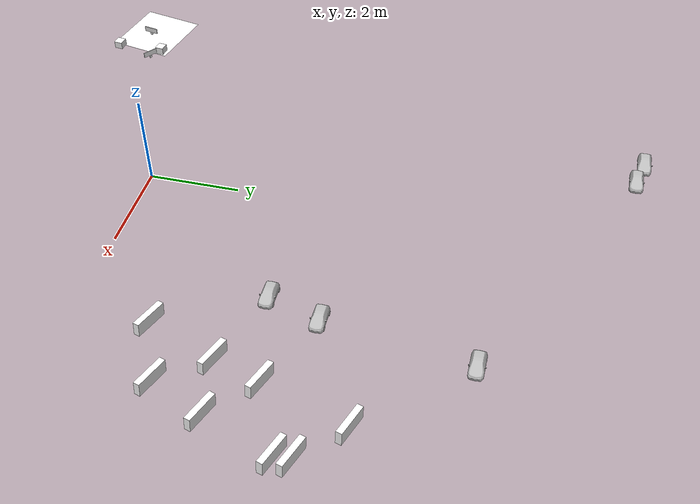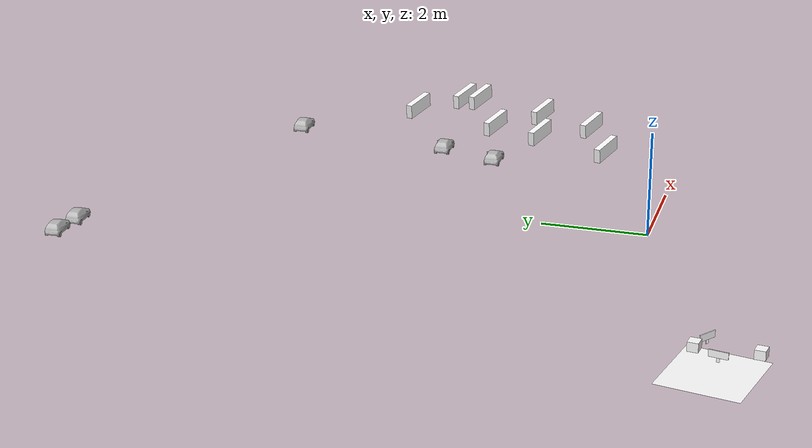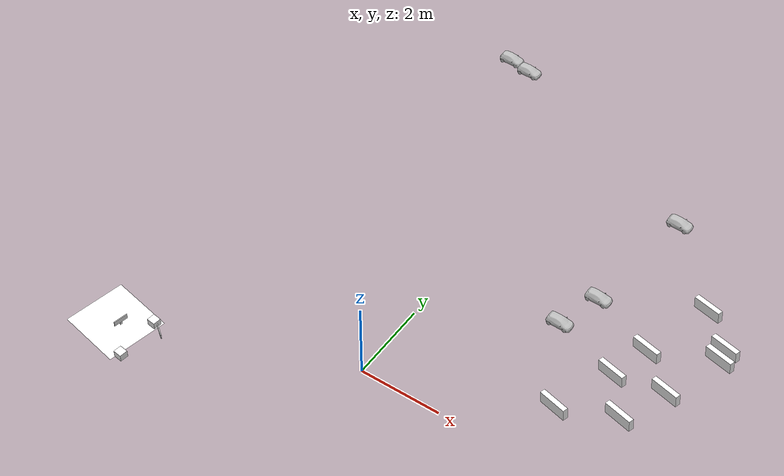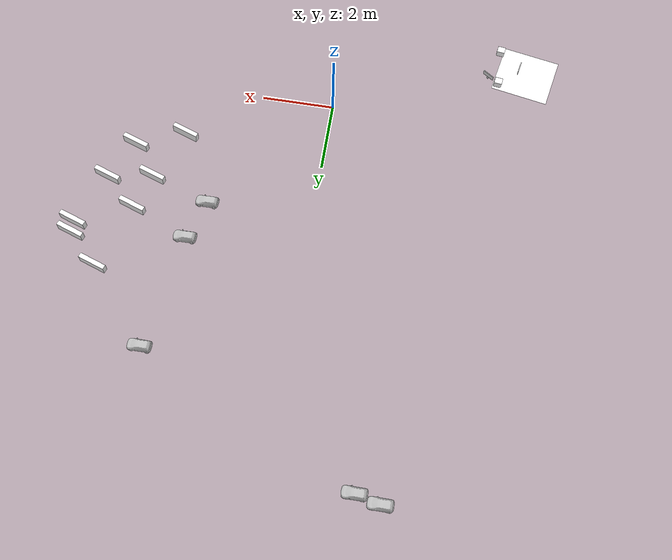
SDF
<sdf version="1.10">
 <world name="default">
  <light type="directional" name="my_light">
   <pose>0 0 30 0 0 0</pose>
   <diffuse>1.0 1.0 1.0 1</diffuse>
   <specular>.1 .1 .1 1</specular>
   <attenuation><range>100</range></attenuation>
   <direction>0 0 -1</direction>
  </light>
  <physics type="ode">
   <max_step_size>0.0040000000000000001</max_step_size>
   <real_time_factor>1</real_time_factor>
   <real_time_update_rate>250</real_time_update_rate>
  </physics>
  <plugin name="gz::sim::systems::Physics" filename="gz-sim-physics-system"/>
  <plugin name="gz::sim::systems::UserCommands" filename="gz-sim-user-commands-system"/>
  <plugin name="gz::sim::systems::SceneBroadcaster" filename="gz-sim-scene-broadcaster-system"/>
  <plugin name="gz::sim::systems::Contact" filename="gz-sim-contact-system"/>
  <plugin name="gz::sim::systems::Imu" filename="gz-sim-imu-system"/>
  <plugin name="gz::sim::systems::Magnetometer" filename="gz-sim-magnetometer-system"/>
  <plugin name="gz::sim::systems::Altimeter" filename="gz-sim-altimeter-system"/>
  <plugin name="gz::sim::systems::NavSat" filename="gz-sim-navsat-system"/>
  <plugin name="gz::sim::systems::Sensors" filename="gz-sim-sensors-system">
   <render_engine>ogre2</render_engine>
  </plugin>
  <gravity>0 0 -9.8000000000000007</gravity>
  <magnetic_field>6.0000000000000002e-06 2.3e-05 -4.1999999999999998e-05</magnetic_field>
  <atmosphere type="adiabatic"/>
  <spherical_coordinates>
   <surface_model>EARTH_WGS84</surface_model>
   <latitude_deg>39.79480109851339</latitude_deg>
   <longitude_deg>-84.08631702793322</longitude_deg>
   <elevation>265.2</elevation>
   <heading_deg>0</heading_deg>
  </spherical_coordinates>
  <scene><grid>false</grid></scene>
  <include>
   <uri>models://finish_line</uri>
   <name>finish</name>
   <pose>-5.324240 -1.994640 0.007000 0 0 -0.200000</pose>
  </include>
  <include>
   <uri>models://stop_sign</uri>
   <name>stop_sign</name>
   <pose>-5.1 -2.04 0.247000 0 0 -0.200000</pose>
  </include>
  <include>
   <uri>models://start_sign</uri>
   <name>start</name>
   <pose>-4.252800 -1.737550 0.147000 0 0 -2.200000</pose>
  </include>
  <include>
   <uri>models://start_point</uri>
   <name>start_point_1</name>
   <pose>-4.552800 -1.566710 0.100000 0 0 -1.700000</pose>
  </include>
  <include>
   <uri>models://start_point</uri>
   <name>start_point_2</name>
   <pose>-4.552800 -2.676710 0.100000 0 0 -1.700000</pose>
  </include>
  <include>
   <uri>models://barricade</uri>
   <name>barricade_1</name>
   <pose>5.690680 3.213550 0.081000 0 -0.100000 -0.300000</pose>
  </include>
  <include>
   <uri>models://barricade</uri>
   <name>barricade_2</name>
   <pose>4.790680 4.013550 0.081000 0 -0.100000 -0.300000</pose>
  </include>
  <include>
   <uri>models://barricade</uri>
   <name>barricade_3</name>
   <pose>4.490680 3.013550 0.081000 0 -0.100000 -0.300000</pose>
  </include>
  <include>
   <uri>models://barricade</uri>
   <name>barricade_4</name>
   <pose>6.190680 5.013550 0.081000 0 -0.100000 -0.300000</pose>
  </include>
  <include>
   <uri>models://barricade</uri>
   <name>barricade_5</name>
   <pose>6.225080 4.683330 0.081000 0 -0.100000 -0.300000</pose>
  </include>
  <include>
   <uri>models://barricade</uri>
   <name>barricade_6</name>
   <pose>5.194560 2.082410 0.081000 0 -0.100000 -0.300000</pose>
  </include>
  <include>
   <uri>models://barricade</uri>
   <name>barricade_7</name>
   <pose>3.913470 1.539040 0.081000 0 -0.100000 -0.300000</pose>
  </include>
  <include>
   <uri>models://barricade</uri>
   <name>barricade_8</name>
   <pose>5.357740 5.817030 0.081000 0 -0.100000 -0.300000</pose>
  </include>
  <include><uri>models://hatchback_red</uri><name>car_1</name><pose>-2.839240 10.533400 0 0 0 0</pose></include>
  <include><uri>models://hatchback_red</uri><name>car_2</name><pose>-2.219100 10.387000 0 0 0 0</pose></include>
  <include><uri>models://hatchback_red</uri><name>car_5</name><pose>2.778630 3.582720 0 0 0 0</pose></include>
  <include><uri>models://hatchback_red</uri><name>car_7</name><pose>3.127710 4.690750 0 0 0 0</pose></include>
  <include><uri>models://hatchback_red</uri><name>car_9</name><pose>3.538780 7.775480 0 0 0 0</pose></include>
 </world>
</sdf>

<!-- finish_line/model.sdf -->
<sdf version='1.7'>
  <model name='finish_line'>
    <link name='link'>
      <pose>0 0 0 0 -0 0</pose>
      <visual name='visual'>
        <geometry>
          <box>
            <size>1.599197 1.5 0</size>
          </box>
        </geometry>
        <material>
        <diffuse>1.0 1.0 1.0</diffuse>
          <specular>1.0 1.0 1.0</specular>
          <pbr>
          <metal>
          <albedo_map>materials/textures/race.png</albedo_map>
          </metal>
          </pbr>
          <shader type='pixel'/>
        </material>
        <pose>0 0 0 0 -0 0</pose>
        <transparency>0</transparency>
        <cast_shadows>1</cast_shadows>
      </visual>
    </link>
    <static>1</static>
  </model>
</sdf>

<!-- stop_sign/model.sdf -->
<sdf version='1.10'>
  <model name='stop_sign'>
    <link name='link_0'>
      <inertial>
        <mass>1</mass>
        <inertia>
          <ixx>1</ixx>
          <ixy>0</ixy>
          <ixz>0</ixz>
          <iyy>1</iyy>
          <iyz>0</iyz>
          <izz>1</izz>
        </inertia>

      </inertial>
      <pose>0 -0 0 0 -0 0</pose>
      <self_collide>0</self_collide>
      <enable_wind>0</enable_wind>
      <kinematic>0</kinematic>
      <visual name='visual'>
        <pose>0 0 0 0 -0 0</pose>
        <geometry>
          <box>
            <size>0.01897 0.348892 0.127526</size>
          </box>
        </geometry>
        <material>
          <diffuse>1.0 1.0 1.0</diffuse>
          <specular>1.0 1.0 1.0</specular>
          <pbr>
          <metal>
          <albedo_map>materials/textures/Stop.png</albedo_map>
          </metal>
          </pbr>
          <shader type='pixel'/>
        </material>
        <transparency>0</transparency>
        <cast_shadows>1</cast_shadows>
      </visual>
    </link>
    <link name='link_1'>
      <inertial>
        <mass>9.52726e-05</mass>
        <inertia>
          <ixx>1</ixx>
          <ixy>0</ixy>
          <ixz>0</ixz>
          <iyy>1</iyy>
          <iyz>0</iyz>
          <izz>1</izz>
        </inertia>
        <pose>0 0 0 0 -0 0</pose>
      </inertial>
      <pose>-0.002789 -0 -0.068834 0 -0 0</pose>
      <self_collide>0</self_collide>
      <enable_wind>0</enable_wind>
      <kinematic>0</kinematic>
      <visual name='visual'>
        <pose>0 0 0 0 -0 0</pose>
        <geometry>
          <box>
            <size>0.012242 0.055737 0.139564</size>
          </box>
        </geometry>
        <material>
          <diffuse>1.0 1.0 1.0</diffuse>
          <specular>1.0 1.0 1.0</specular>
          <pbr>
          <metal>
          <albedo_map>materials/textures/red.png</albedo_map>
          </metal>
          </pbr>
          <shader type='pixel'/>
        </material>
        <transparency>0</transparency>
        <cast_shadows>1</cast_shadows>
      </visual>
    </link>
    <link name='link_2'>
      <inertial>
        <mass>1</mass>
        <inertia>
          <ixx>1</ixx>
          <ixy>0</ixy>
          <ixz>0</ixz>
          <iyy>1</iyy>
          <iyz>0</iyz>
          <izz>1</izz>
        </inertia>

      </inertial>
      <pose>0.0097 -0 0 0 -0 0</pose>
      <self_collide>0</self_collide>
      <enable_wind>0</enable_wind>
      <kinematic>0</kinematic>
      <visual name='visual'>
        <pose>0 0 0 0 -0 0</pose>
        <geometry>
          <box>
            <size>0.001897 0.348892 0.127526</size>
          </box>
        </geometry>
        <material>
          <diffuse>1.0 1.0 1.0</diffuse>
          <specular>1.0 1.0 1.0</specular>
          <pbr>
          <metal>
          <albedo_map>materials/textures/Stop.png</albedo_map>
          </metal>
          </pbr>
          <shader type='pixel'/>
        </material>
        <transparency>0.2</transparency>
        <cast_shadows>1</cast_shadows>
      </visual>
    </link>

    <static>1</static>
    <allow_auto_disable>1</allow_auto_disable>
  </model>
</sdf>

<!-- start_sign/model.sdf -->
<sdf version='1.7'>
<plugin filename="gz-sim-contact-system"
          name="gz::sim::systems::Contact">
    </plugin>
  <model name='start_sign'>
    <link name='link_0'>
      <inertial>
        <mass>1</mass>
        <inertia>
          <ixx>1</ixx>
          <ixy>0</ixy>
          <ixz>0</ixz>
          <iyy>1</iyy>
          <iyz>0</iyz>
          <izz>1</izz>
        </inertia>

      </inertial>
      <pose>0 -0 0 0 -0 0</pose>
      <self_collide>0</self_collide>
      <enable_wind>0</enable_wind>
      <kinematic>0</kinematic>
      <visual name='visual'>
        <pose>0 0 0 0 -0 0</pose>
        <geometry>
          <box>
            <size>0.01897 0.348892 0.127526</size>
          </box>
        </geometry>
        <material>
          <diffuse>1.0 1.0 1.0</diffuse>
          <specular>1.0 1.0 1.0</specular>
          <pbr>
          <metal>
          <albedo_map>materials/textures/green.png</albedo_map>
          </metal>
          </pbr>
          <shader type='pixel'/>
        </material>
        <transparency>0</transparency>
        <cast_shadows>1</cast_shadows>
      </visual>

      <collision name='collision'>
        <laser_retro>0</laser_retro>
        <max_contacts>10</max_contacts>
        <pose>0 0 0 0 -0 0</pose>
        <geometry>
          <box>
            <size>0.01897 0.348892 0.127526</size>
          </box>
        </geometry>

      </collision>
    <sensor name='sensor_contact' type='contact'>
          <contact>
            <collision>collision</collision>
            <topic>/collision_detect</topic>
          </contact>
          <always_on>1</always_on>
          <update_rate>100</update_rate>
        </sensor>
    </link>
    <link name='link_2'>
      <inertial>
        <mass>1</mass>
        <inertia>
          <ixx>1</ixx>
          <ixy>0</ixy>
          <ixz>0</ixz>
          <iyy>1</iyy>
          <iyz>0</iyz>
          <izz>1</izz>
        </inertia>

      </inertial>
      <pose>0.009485 -0 0 0 -0 0</pose>
      <self_collide>0</self_collide>
      <enable_wind>0</enable_wind>
      <kinematic>0</kinematic>
      <visual name='visual'>
        <pose>0 0 0 0 -0 0</pose>
        <geometry>
          <box>
            <size>0.001 0.348892 0.127526</size>
          </box>
        </geometry>
        <material>
          <diffuse>1.0 1.0 1.0</diffuse>
          <specular>1.0 1.0 1.0</specular>
          <pbr>
          <metal>
          <albedo_map>materials/textures/start.png</albedo_map>
          </metal>
          </pbr>
          <shader type='pixel'/>
        </material>
        <transparency>0.2</transparency>
        <cast_shadows>0</cast_shadows>
      </visual>
      <collision name='collision'>
        <laser_retro>0</laser_retro>
        <max_contacts>10</max_contacts>
        <pose>0 0 0 0 -0 0</pose>
        <geometry>
          <box>
            <size>0.001897 0.348892 0.127526</size>
          </box>
        </geometry>

      </collision>
    <sensor name='sensor_contact' type='contact'>
          <contact>
            <collision>collision</collision>
            <topic>/collision_detect</topic>
          </contact>
          <always_on>1</always_on>
          <update_rate>100</update_rate>
        </sensor>
    </link>
    <link name='link_1'>
      <inertial>
        <mass>9.52726e-05</mass>
        <inertia>
          <ixx>1</ixx>
          <ixy>0</ixy>
          <ixz>0</ixz>
          <iyy>1</iyy>
          <iyz>0</iyz>
          <izz>1</izz>
        </inertia>
        <pose>0 0 0 0 -0 0</pose>
      </inertial>
      <pose>-0.002789 -0 -0.068834 0 -0 0</pose>
      <self_collide>0</self_collide>
      <enable_wind>0</enable_wind>
      <kinematic>0</kinematic>
      <visual name='visual'>
        <pose>0 0 0 0 -0 0</pose>
        <geometry>
          <box>
            <size>0.012242 0.055737 0.139564</size>
          </box>
        </geometry>
        <material>
          <diffuse>1.0 1.0 1.0</diffuse>
          <specular>1.0 1.0 1.0</specular>
          <pbr>
          <metal>
          <albedo_map>materials/textures/blue.png</albedo_map>
          </metal>
          </pbr>
          <shader type='pixel'/>
        </material>
        <transparency>0</transparency>
        <cast_shadows>1</cast_shadows>
      </visual>
      <collision name='collision'>
        <laser_retro>0</laser_retro>
        <max_contacts>10</max_contacts>
        <pose>0 0 0 0 -0 0</pose>
        <geometry>
          <box>
            <size>0.012242 0.055737 0.139564</size>
          </box>
        </geometry>
      </collision>
    <sensor name='sensor_contact' type='contact'>
          <contact>
            <collision>collision</collision>
            <topic>/collision_detect</topic>
          </contact>
          <always_on>1</always_on>
          <update_rate>100</update_rate>
        </sensor>
    </link>

    <static>1</static>
    <allow_auto_disable>1</allow_auto_disable>
  </model>
</sdf>

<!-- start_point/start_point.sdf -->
<sdf version='1.7'>
  <model name='start_point'>
  <plugin filename="gz-sim-contact-system"
          name="gz::sim::systems::Contact">
    </plugin>
    <link name='link'>
      <pose>0 0 0 0 -0 0</pose>
      <visual name='visual'>
        <geometry>
          <box>
            <size>0.199197 0.213873 0.172311</size>
          </box>
        </geometry>
        <material>
          <diffuse>1.0 1.0 1.0</diffuse>
          <specular>1.0 1.0 1.0</specular>
          <pbr>
          <metal>
          <albedo_map>materials/textures/race.png</albedo_map>
          </metal>
          </pbr>
          <shader type='pixel'/>
        </material>
        <pose>0 0 0 0 -0 0</pose>
        <transparency>0</transparency>
        <cast_shadows>1</cast_shadows>
      </visual>
      <collision name='collision'>
        <laser_retro>0</laser_retro>
        <max_contacts>10</max_contacts>
        <pose>0 0 0 0 -0 0</pose>
        <geometry>
          <box>
            <size>0.199197 0.213873 0.172311</size>
          </box>
        </geometry>
      </collision>
      <sensor name='sensor_contact' type='contact'>
          <contact>
            <collision>collision</collision>
            <topic>/collision_detect</topic>
          </contact>
          <always_on>1</always_on>
          <update_rate>100</update_rate>
        </sensor>
    </link>
    <static>1</static>
  </model>
</sdf>

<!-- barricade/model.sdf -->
<sdf version='1.7'>
  <model name='barricade'>
  <plugin filename="gz-sim-contact-system"
          name="gz::sim::systems::Contact">
    </plugin>
  <static>true</static>
    <link name='link'>
      <inertial>
        <mass>0.245303</mass>
        <inertia>
          <ixx>0.000221867</ixx>
          <ixy>0</ixy>
          <ixz>0</ixz>
          <iyy>0.00228889</iyy>
          <iyz>0</iyz>
          <izz>0.00232105</izz>
        </inertia>
        <pose>0 0 0 0 -0 0</pose>
      </inertial>
      <self_collide>0</self_collide>
      <enable_wind>0</enable_wind>
      <kinematic>0</kinematic>
      <pose>0 0 0 0 -0 0</pose>
      <visual name='visual'>
        <geometry>
          <box>
            <size>0.727613 0.128825 0.288118</size>
          </box>
        </geometry>
        <material>
          <diffuse>1.0 1.0 1.0</diffuse>
          <specular>1.0 1.0 1.0</specular>
          <pbr>
          <metal>
          <albedo_map>materials/textures/blue.png</albedo_map>
          </metal>
          </pbr>
          <shader type='pixel'/>
        </material>
        <pose>0 0 0 0 -0 0</pose>
        <transparency>0</transparency>
        <cast_shadows>1</cast_shadows>
      </visual>
      <collision name='collision'>
        <laser_retro>0</laser_retro>
        <max_contacts>10</max_contacts>
        <pose>0 0 0 0 -0 0</pose>
        <geometry>
          <box>
            <size>0.727613 0.128825 0.288118</size>
          </box>
        </geometry>
        <surface>
          <friction>
            <ode>
              <mu>1</mu>
              <mu2>1</mu2>
              <fdir1>0 0 0</fdir1>
              <slip1>0</slip1>
              <slip2>0</slip2>
            </ode>
            <torsional>
              <coefficient>1</coefficient>
              <patch_radius>0</patch_radius>
              <surface_radius>0</surface_radius>
              <use_patch_radius>1</use_patch_radius>
              <ode>
                <slip>0</slip>
              </ode>
            </torsional>
          </friction>
          <bounce>
            <restitution_coefficient>0</restitution_coefficient>
            <threshold>1e+06</threshold>
          </bounce>
          <contact>
            <collide_without_contact>0</collide_without_contact>
            <collide_without_contact_bitmask>1</collide_without_contact_bitmask>
            <collide_bitmask>1</collide_bitmask>
            <ode>
              <soft_cfm>0</soft_cfm>
              <soft_erp>0.2</soft_erp>
              <kp>1e+13</kp>
              <kd>1</kd>
              <max_vel>0.01</max_vel>
              <min_depth>0</min_depth>
            </ode>
            <bullet>
              <split_impulse>1</split_impulse>
              <split_impulse_penetration_threshold>-0.01</split_impulse_penetration_threshold>
              <soft_cfm>0</soft_cfm>
              <soft_erp>0.2</soft_erp>
              <kp>1e+13</kp>
              <kd>1</kd>
            </bullet>
          </contact>
        </surface>
      </collision>
      <sensor name='sensor_contact' type='contact'>
          <contact>
            <collision>collision</collision>
            <topic>/collision_detect</topic>
          </contact>
          <always_on>1</always_on>
          <update_rate>100</update_rate>
        </sensor>
    </link>
    <static>1</static>
    <allow_auto_disable>1</allow_auto_disable>
  </model>
</sdf>

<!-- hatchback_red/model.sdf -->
<sdf version="1.6">
  <model name="hatchback_red">
  <plugin filename="gz-sim-contact-system"
          name="gz::sim::systems::Contact">
    </plugin>
    <static>true</static>
    <link name="link">
      <collision name="collision">
        <pose>0 0 0 0 0 1.57079632679</pose>
        <geometry>
          <mesh>
            <scale>0.004 0.004 0.004</scale>
            <uri>meshes/hatchback_red.obj</uri>
          </mesh>
        </geometry>
      </collision>
      <visual name="visual">
        <pose>0 0 0 0 0 1.57079632679</pose>
        <geometry>
          <mesh>
            <scale>0.004 0.004 0.004</scale>
            <uri>meshes/hatchback_red.obj</uri>
          </mesh>
        </geometry>
      </visual>
      <sensor name='sensor_contact' type='contact'>
          <contact>
            <collision>collision</collision>
            <topic>/collision_detect</topic>
          </contact>
          <always_on>1</always_on>
          <update_rate>100</update_rate>
        </sensor>
    </link>
  </model>
</sdf>
